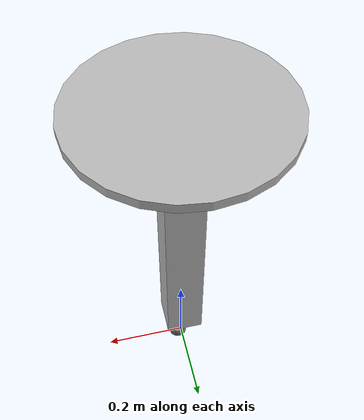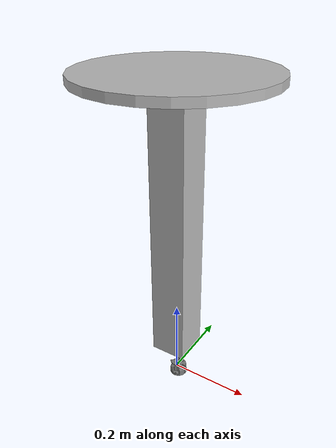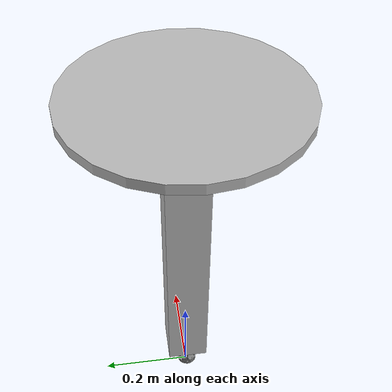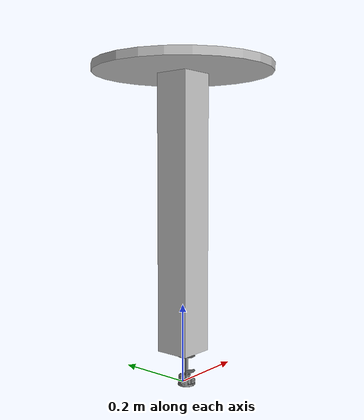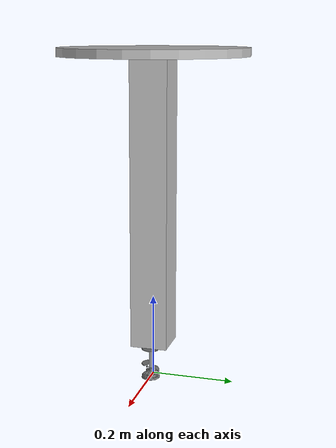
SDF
<?xml version="1.0" ?>
<sdf version="1.4">
  <model name="robotino3">
    <static>false</static>
    <link name="body">
      <pose>0 0 0.001 0 0 0</pose>
      <gravity>true</gravity>
      <inertial>
        <mass>30</mass>
        <pose>0 0 0.075 0 0 0</pose>
        <inertia>
	  <!-- according to http://en.wikipedia.org/wiki/List_of_moments_of_inertia for a solid cylinder of radius r=0.225, height h=0.15, mass m=30 -->
          <ixx>0.4359375</ixx>
          <ixy>0.0</ixy>
          <ixz>0.0</ixz>
          <iyy>0.4359375</iyy>
          <iyz>0.0</iyz>
          <izz>0.759375</izz>
        </inertia>
      </inertial>
      <visual name="body-visual">
        <pose>0.01 0 0.00 0 0 1.570795</pose>
        <geometry>
          <mesh>
            <uri>model://robotino3/meshes/robotino3.dae</uri>
            <scale>0.001 0.001 0.001</scale>
          </mesh>
        </geometry>
        <cast_shadows>false</cast_shadows>
      </visual>
      <collision name="body-collision">
        <pose>0 0 0.035 0 0 0</pose>
        <geometry>
          <cylinder>
            <length>0.07</length>
            <radius>0.225</radius>
          </cylinder>
        </geometry>
        <surface>
          <friction>
            <ode>
              <mu>0.2</mu>
              <mu2>0.2</mu2>
              <slip1>0.8</slip1>
              <slip2>0.8</slip2>
            </ode>
          </friction>
        </surface>
      </collision>
      <visual name="tower">
        <pose>0.00 0.00 0.43 0 0 0</pose>
        <geometry>
          <box>
            <size>0.09 0.09 0.70</size>
          </box>
        </geometry>
      </visual>
      <visual name="tower_plate">
        <pose>0 0 0.79 0 0 0</pose>
        <geometry>
          <cylinder>
            <length>0.02</length>
            <radius>0.225</radius>
          </cylinder>
        </geometry>
      </visual>
    </link>

    <plugin name="Motor" filename="libmotor.so"/>
    <plugin name="Gyro" filename="libgyro.so"/>
    <plugin name="GPS" filename="libgps.so"/>
    <plugin name="LightSignalDetection" filename="liblight_signal_detection.so"/>
  </model>
</sdf>
